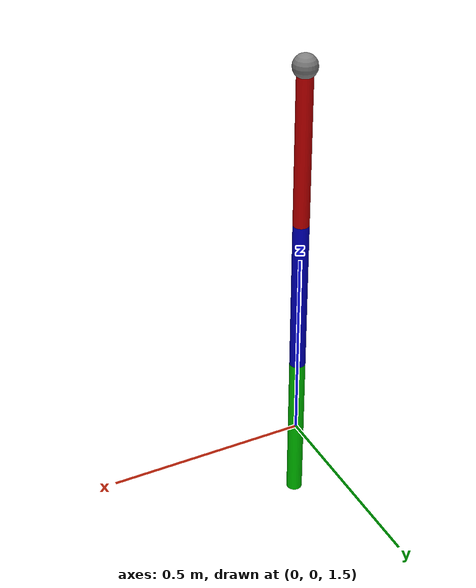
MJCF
<mujoco>
	<!-- Solver options -->
	<option timestep="0.0001" integrator="RK4" >
		<flag sensornoise="disable" energy="enable" contact="disable" />
	</option>

	<compiler angle="radian"/>
	<size nkey="1" />

	<keyframe>
    	<key name="q0" qpos="0.5 0 0" time="50"/>
  	</keyframe>

	<worldbody>
        <light diffuse=".5 .5 .5" pos="0 0 3" dir="0 0 -1"/>
		<geom type="plane" size="1 1 0.1" rgba=".9 0 0 1"/>
		<body pos="0 0 1.5" euler="0 0 0">
			<joint name="joint_0" range="-0.6 0.6" axis = "1 0 0" pos="0 0 -0.2"/>

			<geom type="cylinder" size="0.02 0.2" rgba="0 .9 0 1" mass="1"/>
			<inertial pos = "0 0 0" mass = "1" diaginertia = "0.000453 0.000453 0.000453"/>
			<body pos="0 0 0.4" euler="0 0 0">
				<joint name="joint_1" axis = "1 0 0" pos="0 0 -0.2"/>

				<geom type="cylinder" size="0.02 0.2" rgba="0 0 .9 1" mass="1"/>
				<inertial pos = "0 0 0" mass = "1" diaginertia = "0.000492 0.000492 0.000492"/>
				<body pos="0 0 0.4" euler="0 0 0">
					<joint name="joint_2" axis = "1 0 0" pos="0 0 -0.2"/>

					<geom type="cylinder" size="0.02 0.2" rgba=".9 0 0 1" mass="1"/>
					<inertial pos = "0 0 0" mass = "1" diaginertia = "0.000492 0.000492 0.000492"/>
					<site name="endeff" pos="0 0 0.2" size="0.03"/>
				</body>
			</body>
		</body>
	</worldbody>

	<!-- Actuator descriptions -->
	<actuator>
		<general joint="joint_0" name="ACT0" gaintype="user" dyntype="user" biastype="user" actdim="2" group="777"/>
		<general joint="joint_1" name="RIGID1" gaintype="user" dyntype="user" biastype="user" actdim="2" />
		<general joint="joint_2" name="ACT2" gaintype="user" dyntype="user" biastype="user" actdim="2" group="777"/>
	</actuator>

	<!-- Available sensors -->
	<sensor>
		<jointpos joint="joint_0"/>
		<jointvel joint="joint_0"/>

		<jointpos joint="joint_1"/>
		<jointvel joint="joint_1"/>

		<jointpos joint="joint_2"/>
		<jointvel joint="joint_2"/>
	</sensor>
</mujoco>
